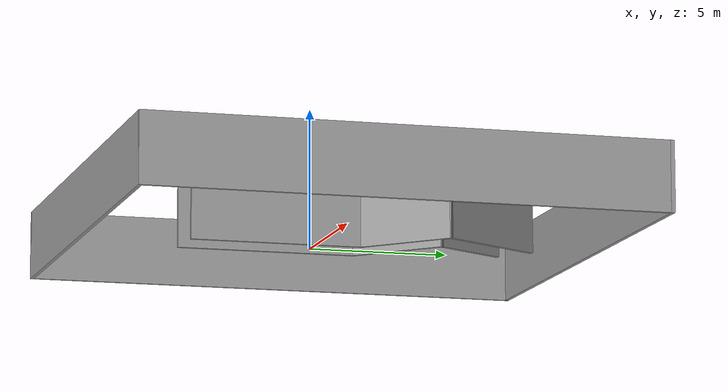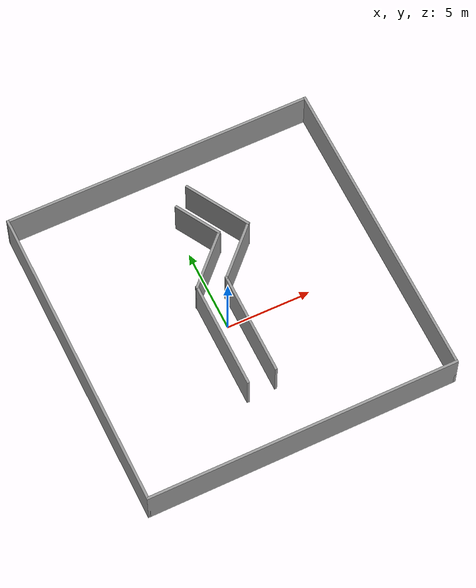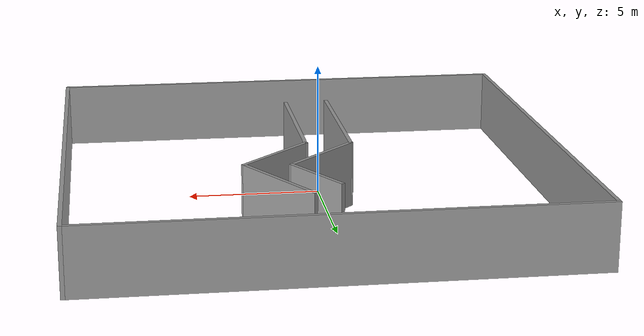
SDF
<?xml version='1.0'?>
<sdf version='1.7'>
  <model name='thin_wall'>
    <pose>0.516092 0.893382 0 0 -0 0</pose>
    <link name='Wall_12'>
      <collision name='Wall_12_Collision'>
        <geometry>
          <box>
            <size>18.5 0.15 2.5</size>
          </box>
        </geometry>
        <pose>0 0 1.25 0 -0 0</pose>
      </collision>
      <visual name='Wall_12_Visual'>
        <pose>0 0 1.25 0 -0 0</pose>
        <geometry>
          <box>
            <size>18.5 0.15 2.5</size>
          </box>
        </geometry>
        <material>
          <script>
            <uri>file://media/materials/scripts/gazebo.material</uri>
            <name>Gazebo/Grey</name>
          </script>
          <ambient>1 1 1 1</ambient>
        </material>
        <meta>
          <layer>0</layer>
        </meta>
      </visual>
      <pose>-9.175 0 0 0 -0 -1.5708</pose>
    </link>
    <link name='Wall_13'>
      <collision name='Wall_13_Collision'>
        <geometry>
          <box>
            <size>18.5 0.15 2.5</size>
          </box>
        </geometry>
        <pose>0 0 1.25 0 -0 0</pose>
      </collision>
      <visual name='Wall_13_Visual'>
        <pose>0 0 1.25 0 -0 0</pose>
        <geometry>
          <box>
            <size>18.5 0.15 2.5</size>
          </box>
        </geometry>
        <material>
          <script>
            <uri>file://media/materials/scripts/gazebo.material</uri>
            <name>Gazebo/Grey</name>
          </script>
          <ambient>1 1 1 1</ambient>
        </material>
        <meta>
          <layer>0</layer>
        </meta>
      </visual>
      <pose>0 -9.175 0 0 -0 0</pose>
    </link>
    <link name='Wall_14'>
      <collision name='Wall_14_Collision'>
        <geometry>
          <box>
            <size>18.5 0.15 2.5</size>
          </box>
        </geometry>
        <pose>0 0 1.25 0 -0 0</pose>
      </collision>
      <visual name='Wall_14_Visual'>
        <pose>0 0 1.25 0 -0 0</pose>
        <geometry>
          <box>
            <size>18.5 0.15 2.5</size>
          </box>
        </geometry>
        <material>
          <script>
            <uri>file://media/materials/scripts/gazebo.material</uri>
            <name>Gazebo/Grey</name>
          </script>
          <ambient>1 1 1 1</ambient>
        </material>
        <meta>
          <layer>0</layer>
        </meta>
      </visual>
      <pose>9.175 0 0 0 -0 1.5708</pose>
    </link>
    <link name='Wall_15'>
      <collision name='Wall_15_Collision'>
        <geometry>
          <box>
            <size>18.5 0.15 2.5</size>
          </box>
        </geometry>
        <pose>0 0 1.25 0 -0 0</pose>
      </collision>
      <visual name='Wall_15_Visual'>
        <pose>0 0 1.25 0 -0 0</pose>
        <geometry>
          <box>
            <size>18.5 0.15 2.5</size>
          </box>
        </geometry>
        <material>
          <script>
            <uri>file://media/materials/scripts/gazebo.material</uri>
            <name>Gazebo/Grey</name>
          </script>
          <ambient>1 1 1 1</ambient>
        </material>
        <meta>
          <layer>0</layer>
        </meta>
      </visual>
      <pose>0 9.175 0 0 -0 3.14159</pose>
    </link>
    <link name='Wall_17'>
      <collision name='Wall_17_Collision'>
        <geometry>
          <box>
            <size>6.5 0.15 2.5</size>
          </box>
        </geometry>
        <pose>0 0 1.25 0 -0 0</pose>
      </collision>
      <visual name='Wall_17_Visual'>
        <pose>0 0 1.25 0 -0 0</pose>
        <geometry>
          <box>
            <size>6.5 0.15 2.5</size>
          </box>
        </geometry>
        <material>
          <script>
            <uri>file://media/materials/scripts/gazebo.material</uri>
            <name>Gazebo/Grey</name>
          </script>
          <ambient>1 1 1 1</ambient>
        </material>
        <meta>
          <layer>0</layer>
        </meta>
      </visual>
      <pose>-1.4946 -2.21882 0 0 -0 1.5708</pose>
    </link>
    <link name='Wall_18'>
      <collision name='Wall_18_Collision'>
        <geometry>
          <box>
            <size>3.75 0.15 2.5</size>
          </box>
        </geometry>
        <pose>0 0 1.25 0 -0 0</pose>
      </collision>
      <visual name='Wall_18_Visual'>
        <pose>0 0 1.25 0 -0 0</pose>
        <geometry>
          <box>
            <size>3.75 0.15 2.5</size>
          </box>
        </geometry>
        <material>
          <script>
            <uri>file://media/materials/scripts/gazebo.material</uri>
            <name>Gazebo/Grey</name>
          </script>
          <ambient>1 1 1 1</ambient>
        </material>
        <meta>
          <layer>0</layer>
        </meta>
      </visual>
      <pose>-0.221804 2.22897 0 0 -0 0.785398</pose>
    </link>
    <link name='Wall_19'>
      <collision name='Wall_19_Collision'>
        <geometry>
          <box>
            <size>3 0.15 2.5</size>
          </box>
        </geometry>
        <pose>0 0 1.25 0 -0 0</pose>
      </collision>
      <visual name='Wall_19_Visual'>
        <pose>0 0 1.25 0 -0 0</pose>
        <geometry>
          <box>
            <size>3 0.15 2.5</size>
          </box>
        </geometry>
        <material>
          <script>
            <uri>file://media/materials/scripts/gazebo.material</uri>
            <name>Gazebo/Grey</name>
          </script>
          <ambient>1 1 1 1</ambient>
        </material>
        <meta>
          <layer>0</layer>
        </meta>
      </visual>
      <pose>0.338488 4.73585 0 0 -0 2.0944</pose>
    </link>
    <link name='Wall_22'>
      <collision name='Wall_22_Collision'>
        <geometry>
          <box>
            <size>6.25 0.15 2.5</size>
          </box>
        </geometry>
        <pose>0 0 1.25 0 -0 0</pose>
      </collision>
      <visual name='Wall_22_Visual'>
        <pose>0 0 1.25 0 -0 0</pose>
        <geometry>
          <box>
            <size>6.25 0.15 2.5</size>
          </box>
        </geometry>
        <material>
          <script>
            <uri>file://media/materials/scripts/gazebo.material</uri>
            <name>Gazebo/Grey</name>
          </script>
          <ambient>1 1 1 1</ambient>
        </material>
        <meta>
          <layer>0</layer>
        </meta>
      </visual>
      <pose>0.204538 -2.26291 0 0 -0 1.5708</pose>
    </link>
    <link name='Wall_23'>
      <collision name='Wall_23_Collision'>
        <geometry>
          <box>
            <size>3.75 0.15 2.5</size>
          </box>
        </geometry>
        <pose>0 0 1.25 0 -0 0</pose>
      </collision>
      <visual name='Wall_23_Visual'>
        <pose>0 0 1.25 0 -0 0</pose>
        <geometry>
          <box>
            <size>3.75 0.15 2.5</size>
          </box>
        </geometry>
        <material>
          <script>
            <uri>file://media/materials/scripts/gazebo.material</uri>
            <name>Gazebo/Grey</name>
          </script>
          <ambient>1 1 1 1</ambient>
        </material>
        <meta>
          <layer>0</layer>
        </meta>
      </visual>
      <pose>1.47733 2.05988 0 0 -0 0.785398</pose>
    </link>
    <link name='Wall_24'>
      <collision name='Wall_24_Collision'>
        <geometry>
          <box>
            <size>4.25 0.15 2.5</size>
          </box>
        </geometry>
        <pose>0 0 1.25 0 -0 0</pose>
      </collision>
      <visual name='Wall_24_Visual'>
        <pose>0 0 1.25 0 -0 0</pose>
        <geometry>
          <box>
            <size>4.25 0.15 2.5</size>
          </box>
        </geometry>
        <material>
          <script>
            <uri>file://media/materials/scripts/gazebo.material</uri>
            <name>Gazebo/Grey</name>
          </script>
          <ambient>1 1 1 1</ambient>
        </material>
        <meta>
          <layer>0</layer>
        </meta>
      </visual>
      <pose>1.72512 5.10803 0 0 -0 2.0944</pose>
    </link>
    <static>1</static>
  </model>
</sdf>
